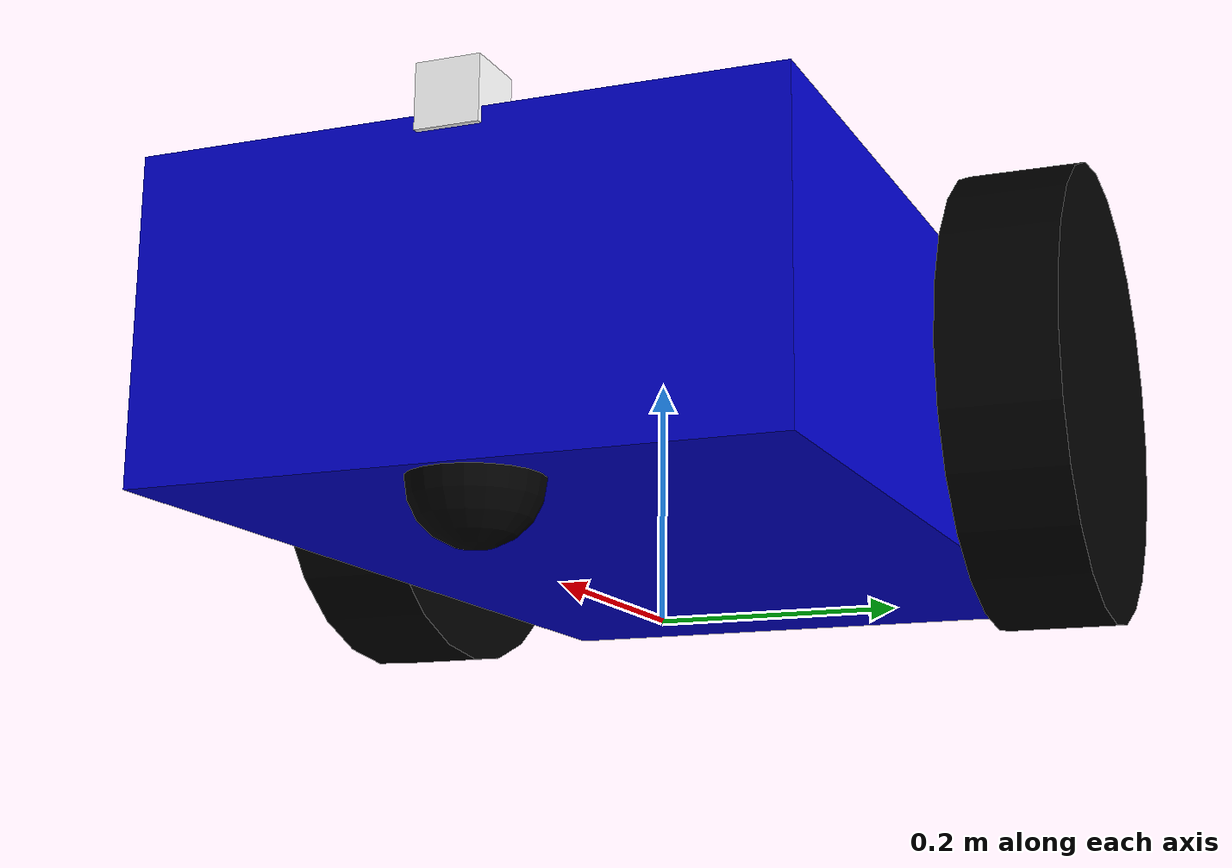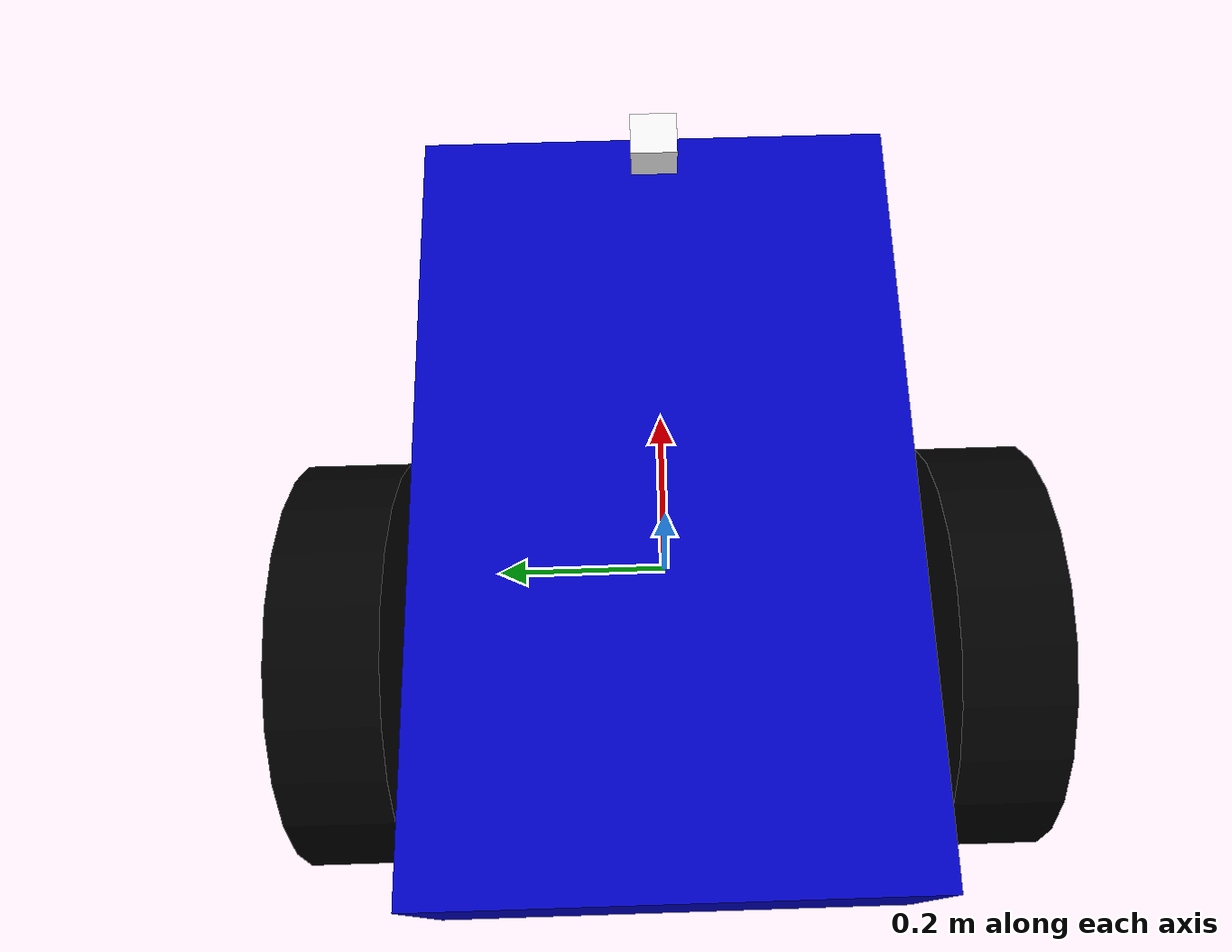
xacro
<?xml version='1.0'?>

<robot name="dd_robot" xmlns:xacro="http://www.ros.org/wiki/xacro">

<xacro:property name="hokuyo_size" value="0.05" />

  <material name="Black">
    <color rgba="0.0 0.0 0.0 1.0"/>
  </material>

  <material name="Red">
    <color rgba="0.8 0.0 0.0 1.0"/>
  </material>

  <material name="White">
    <color rgba="1.0 1.0 1.0 1.0"/>
  </material>

  <material name="Blue">
    <color rgba="0.0 0.0 0.8 1.0"/>
  </material>

<!--dummy-->
<link name="dummy">
    <visual>
        <origin xyz="0 0 0" rpy="0 0 0" />
        <geometry>
            <box size="0.001 0.001 0.001" />
        </geometry>
    </visual>
  </link>
  <gazebo reference="dummy">
    <turnGravityOff>false</turnGravityOff>
  </gazebo>

<!--dumm_joint-->
  <joint name="dummy_joint" type="fixed">
    <origin xyz="0 0 0.175" rpy="0 0 0"/>
     <parent link="dummy"/>
     <child link="base_link"/>
  </joint>

  <!-- Base Link -->
  <link name="base_link">
    <visual>
      <origin xyz="0 0 0" rpy="0 0 0" />
      <geometry>
          <box size="0.8 0.5 0.25"/>
      </geometry>
      <material name="Blue" />
    </visual>

    <!-- Base collision, mass and inertia -->
    <collision>
      <origin xyz="0 0 0" rpy="0 0 0" />
      <geometry>
          <box size="0.8 0.5 0.25"/>
      </geometry>
    </collision>
    <inertial>
      <mass value="5"/>
      <inertia ixx="0.13" ixy="0.0" ixz="0.0" iyy="0.37" iyz="0.0" izz="0.29"/>
    </inertial>
  </link>

    <!-- Caster -->
    <link name="caster_link">
    <visual>
      <origin xyz="0 0 0" rpy="0 0 0" />
      <geometry>
        <sphere radius="0.05" />
      </geometry>
      <material name="Black" />
    </visual>
    <!-- Caster collision, mass and inertia -->
    <collision>
      <origin xyz="0 0 0" rpy="0 0 0" />
      <geometry>
        <sphere radius="0.05" />
      </geometry>
    </collision>
    <inertial>
      <mass value="0.5"/>
      <inertia ixx="0.0005" ixy="0.0" ixz="0.0" iyy="0.0005" iyz="0.0" izz="0.0005"/>
    </inertial>
  </link>

  <!--Caster_joint-->
  <joint name="caster_joint" type="fixed">
    <origin xyz="0.345 0 -0.125" rpy="0 0 0"/>
     <parent link="base_link"/>
     <child link="caster_link"/>
  </joint>

  <!-- Right Wheel -->
  <link name="right_wheel">
    <visual>
      <origin xyz="0 0 0" rpy="1.570795 0 0" />
      <geometry>
          <cylinder length="0.1" radius="0.2" />
      </geometry>
      <material name="Black" />
    </visual>

    <!-- Right Wheel collision, mass and inertia -->
    <collision>
      <origin xyz="0 0 0" rpy="1.570795 0 0" />
      <geometry>
          <cylinder length="0.1" radius="0.2" />
      </geometry>
    </collision>
    <inertial>
      <mass value="0.5"/>
      <inertia ixx="0.01" ixy="0.0" ixz="0.0" iyy="0.005" iyz="0.0" izz="0.005"/>
    </inertial>

  </link>

  <!-- Right Wheel joint -->
  <joint name="joint_right_wheel" type="continuous">
    <parent link="base_link"/>
    <child link="right_wheel"/>
    <origin xyz="-0.15 -0.30 0.025" rpy="0 0 0" />
    <axis xyz="0 1 0" />
  </joint>

  <!-- Left Wheel -->
  <link name="left_wheel">
    <visual>
      <origin xyz="0 0 0" rpy="1.570795 0 0" />
      <geometry>
          <cylinder length="0.1" radius="0.2" />
      </geometry>
      <material name="Black" />
    </visual>

    <!-- Left Wheel collision, mass and inertia -->
    <collision>
      <origin xyz="0 0 0" rpy="1.570795 0 0" />
      <geometry>
          <cylinder length="0.1" radius="0.2" />
      </geometry>
    </collision>
    <inertial>
      <mass value="0.5"/>
      <inertia ixx="0.01" ixy="0.0" ixz="0.0" iyy="0.005" iyz="0.0" izz="0.005"/>
    </inertial>

  </link>

  <!-- Left Wheel joint -->
  <joint name="joint_left_wheel" type="continuous">
    <parent link="base_link"/>
    <child link="left_wheel"/>
    <origin xyz="-0.15 0.30 0.025" rpy="0 0 0" />
    <axis xyz="0 1 0"/>
  </joint>

  <!--LIDAR-->
  <link name="hokuyo_link">
    <visual>
      <origin xyz="0 0 0" rpy="0 0 0" />
      <geometry>
        <box size="${hokuyo_size} ${hokuyo_size} ${hokuyo_size}"/>
      </geometry>
      <material name="White" />
    </visual>
  </link>
  <joint name="hokuyo_joint" type="fixed">
    <origin xyz="${0.405 - hokuyo_size/2} 0 ${0.125+hokuyo_size/4}" rpy="0 0 0" />
    <parent link="base_link"/>
    <child link="hokuyo_link" />
  </joint>

</robot>
